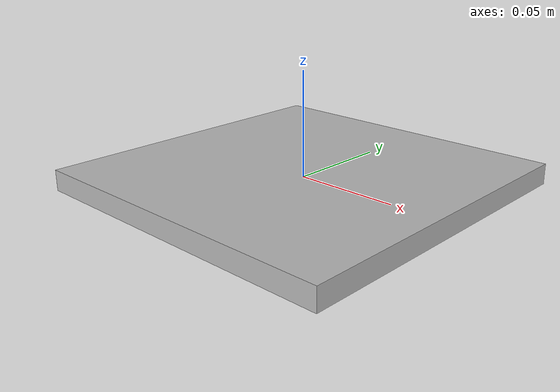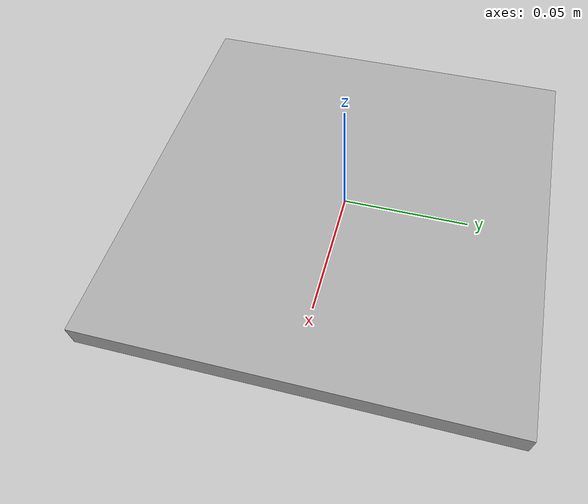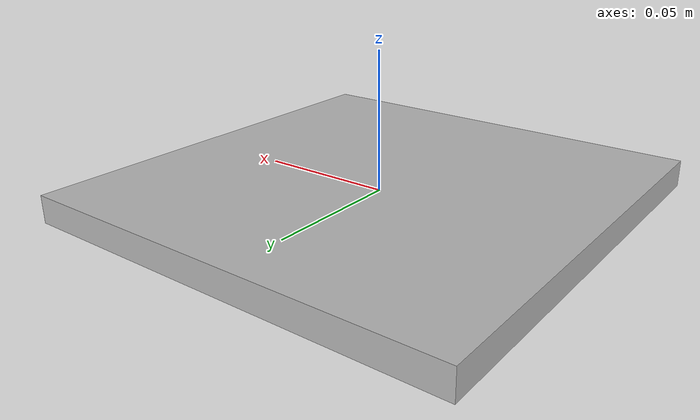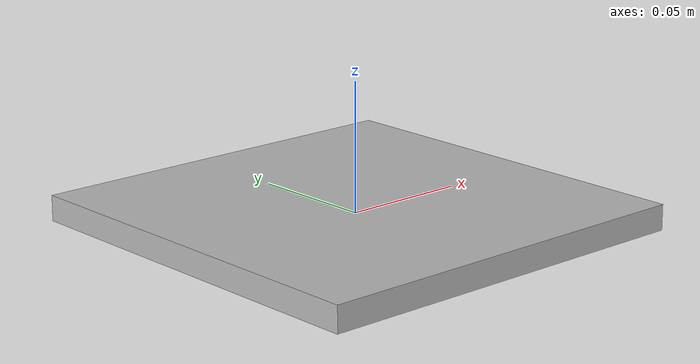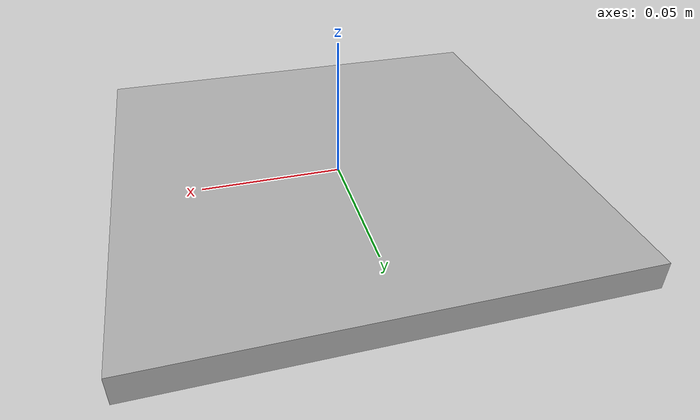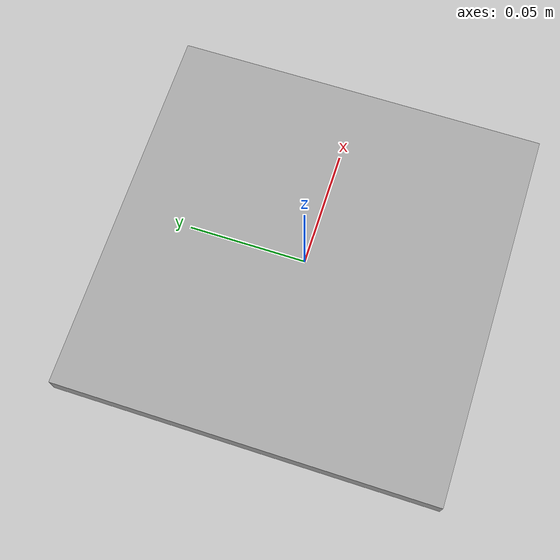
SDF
<?xml version='1.0'?>
<sdf version='1.6'>
  <model name='Apriltag36_11_00002'>
    <link name='main'>
      <pose frame=''>0 0 0 0 0 0</pose>
      <visual name="visual">
        <geometry>
          <mesh>
            <uri>model://Apriltag36_11_00002/meshes/tag36_11_00002.dae</uri>
            <scale>0.08 0.08 0.05</scale>
          </mesh>
        </geometry>
      </visual>
     </link>
    <static>1</static>
  </model>
</sdf>
